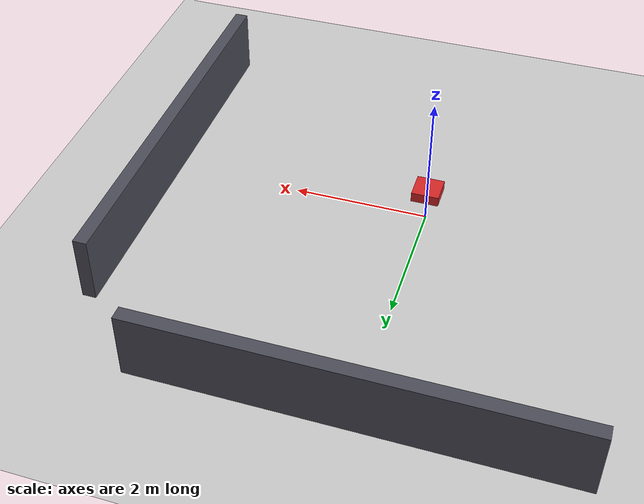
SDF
<?xml version="1.0" ?>
<sdf version="1.8">
  <world name="one_drone">
    <physics name="1ms" type="ignored">
      <max_step_size>0.004</max_step_size>
      <real_time_factor>1.0</real_time_factor>
    </physics>

    <plugin filename="gz-sim-physics-system" name="gz::sim::systems::Physics"/>
    <plugin filename="gz-sim-user-commands-system" name="gz::sim::systems::UserCommands"/>
    <plugin filename="gz-sim-scene-broadcaster-system" name="gz::sim::systems::SceneBroadcaster"/>
    <!-- Renders sensor data (needed for the drone's gpu_lidar, milestone 6b). -->
    <plugin filename="gz-sim-sensors-system" name="gz::sim::systems::Sensors">
      <render_engine>ogre2</render_engine>
    </plugin>

    <light type="directional" name="sun">
      <cast_shadows>true</cast_shadows>
      <pose>0 0 10 0 0 0</pose>
      <diffuse>0.8 0.8 0.8 1</diffuse>
      <specular>0.2 0.2 0.2 1</specular>
      <direction>-0.5 0.1 -0.9</direction>
    </light>

    <!-- Ground plane -->
    <model name="ground_plane">
      <static>true</static>
      <link name="link">
        <collision name="collision">
          <geometry><plane><normal>0 0 1</normal><size>100 100</size></plane></geometry>
        </collision>
        <visual name="visual">
          <geometry><plane><normal>0 0 1</normal><size>100 100</size></plane></geometry>
          <material><ambient>0.8 0.8 0.8 1</ambient><diffuse>0.8 0.8 0.8 1</diffuse></material>
        </visual>
      </link>
    </model>

    <!-- A couple of static walls (obstacles for the later LiDAR) -->
    <model name="wall_a">
      <static>true</static>
      <pose>4 0 0.5 0 0 0</pose>
      <link name="link">
        <collision name="c"><geometry><box><size>0.2 6 1</size></box></geometry></collision>
        <visual name="v"><geometry><box><size>0.2 6 1</size></box></geometry>
          <material><ambient>0.3 0.3 0.35 1</ambient><diffuse>0.3 0.3 0.35 1</diffuse></material></visual>
      </link>
    </model>
    <model name="wall_b">
      <static>true</static>
      <pose>0 4 0.5 0 0 0</pose>
      <link name="link">
        <collision name="c"><geometry><box><size>6 0.2 1</size></box></geometry></collision>
        <visual name="v"><geometry><box><size>6 0.2 1</size></box></geometry>
          <material><ambient>0.3 0.3 0.35 1</ambient><diffuse>0.3 0.3 0.35 1</diffuse></material></visual>
      </link>
    </model>

    <!-- The drone -->
    <model name="drone1">
      <pose>0 0 0.5 0 0 0</pose>
      <link name="base_link">
        <inertial>
          <mass>1.0</mass>
          <inertia><ixx>0.02</ixx><iyy>0.02</iyy><izz>0.02</izz><ixy>0</ixy><ixz>0</ixz><iyz>0</iyz></inertia>
        </inertial>
        <collision name="collision">
          <geometry><box><size>0.4 0.4 0.15</size></box></geometry>
        </collision>
        <visual name="visual">
          <geometry><box><size>0.4 0.4 0.15</size></box></geometry>
          <material><ambient>0.85 0.15 0.15 1</ambient><diffuse>0.85 0.15 0.15 1</diffuse></material>
        </visual>

        <!-- 2-D LiDAR: 360 beams, 12 m range, on top of the drone. -->
        <sensor name="lidar" type="gpu_lidar">
          <pose>0 0 0.1 0 0 0</pose>
          <topic>/model/drone1/scan</topic>
          <update_rate>10</update_rate>
          <always_on>1</always_on>
          <visualize>true</visualize>
          <lidar>
            <scan>
              <horizontal>
                <samples>360</samples>
                <resolution>1</resolution>
                <min_angle>-3.141592653589793</min_angle>
                <max_angle>3.141592653589793</max_angle>
              </horizontal>
              <vertical>
                <samples>1</samples>
                <min_angle>0</min_angle>
                <max_angle>0</max_angle>
              </vertical>
            </scan>
            <range>
              <min>0.25</min>
              <max>12.0</max>
              <resolution>0.01</resolution>
            </range>
          </lidar>
        </sensor>
      </link>

      <!-- Kinematic velocity control: sets the model velocity from cmd_vel.
           Topic: /model/drone1/cmd_vel (gz.msgs.Twist). -->
      <plugin filename="gz-sim-velocity-control-system" name="gz::sim::systems::VelocityControl">
        <topic>/model/drone1/cmd_vel</topic>
      </plugin>

      <!-- Ground-truth pose as odometry. Topic: /model/drone1/odometry. -->
      <plugin filename="gz-sim-odometry-publisher-system" name="gz::sim::systems::OdometryPublisher">
        <odom_frame>odom</odom_frame>
        <robot_base_frame>drone1</robot_base_frame>
        <dimensions>3</dimensions>
        <odom_topic>/model/drone1/odometry</odom_topic>
        <odom_publish_frequency>30</odom_publish_frequency>
      </plugin>
    </model>
  </world>
</sdf>
